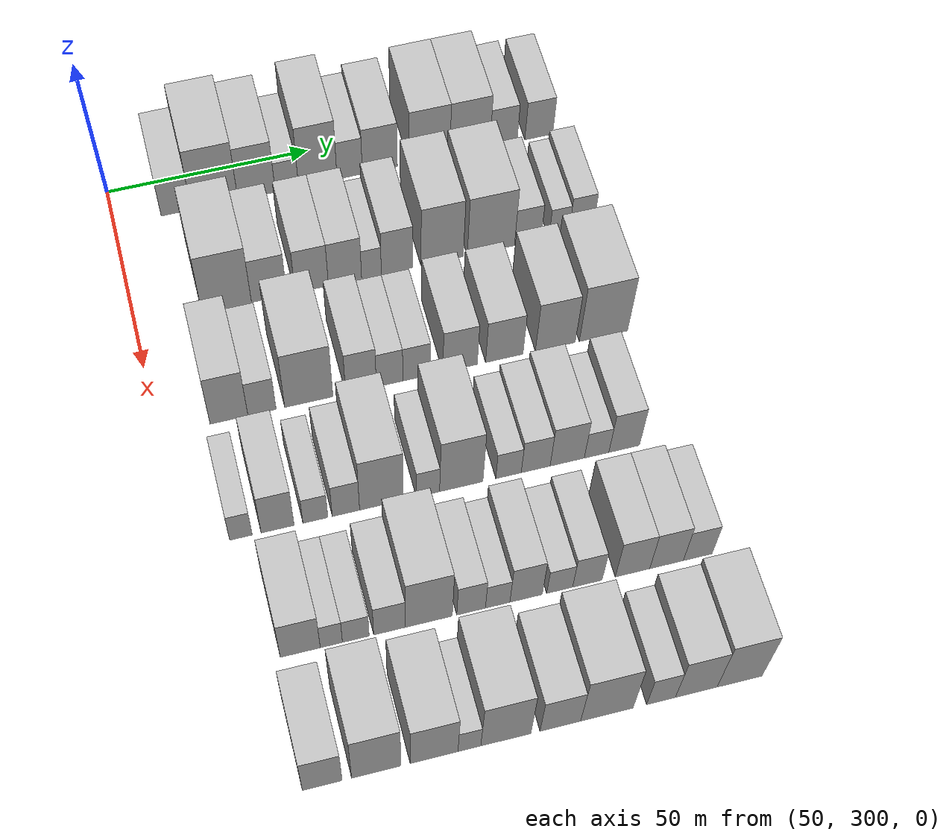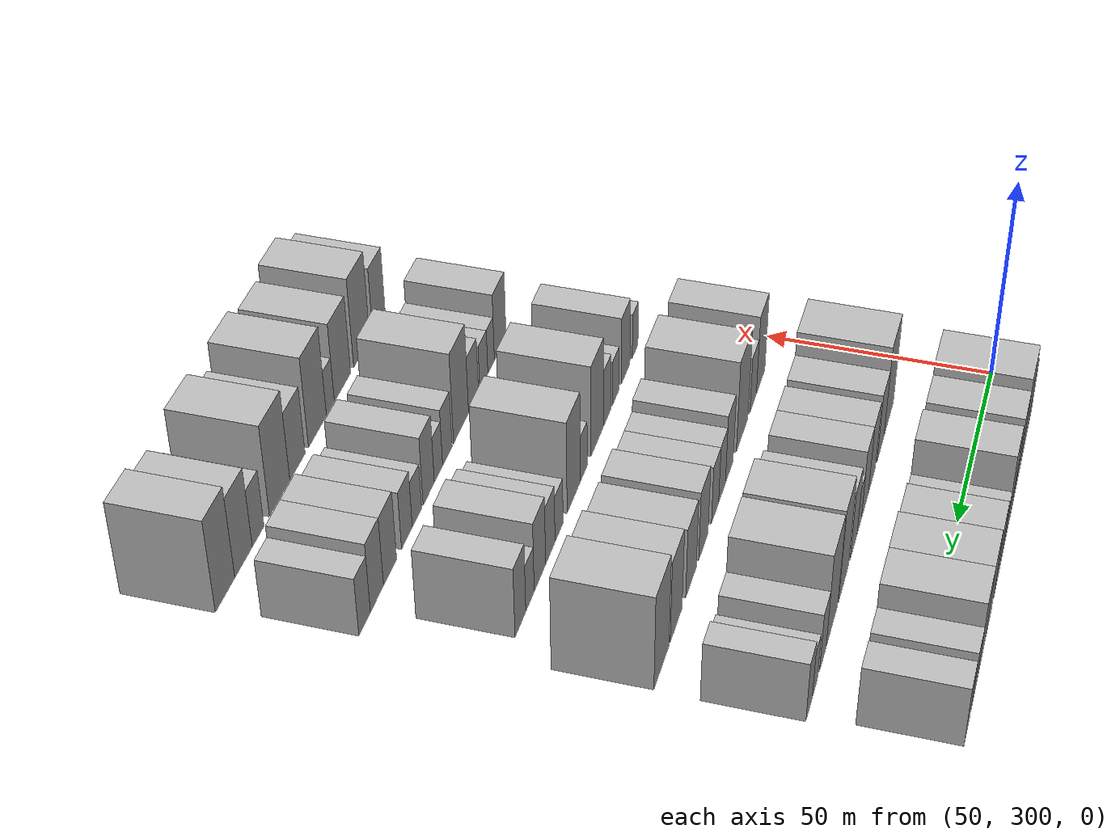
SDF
<sdf version="1.6">
 <world name="default">
  <model name="building_93">
   <static>1</static>
   <pose>50.0000 315.1147 0 0.000000 0.000000 0.000000</pose>
   <link name="link">
    <pose>0 0 7.50 0 0 0</pose>
    <collision name="collision"><geometry><box><size>20.0000 7.3586 15.0000</size></box></geometry></collision>
    <visual name="visual">
     <cast_shadows>0</cast_shadows>
     <geometry><box><size>20.0000 7.3586 15.0000</size></box></geometry>
     <material>
      <script>
       <uri>model://HANNAS_wall/materials/scripts</uri>
       <uri>model://HANNAS_wall/materials/textures</uri>
       <name>vrc/HANNAS_wall</name>
      </script>
     </material>
    </visual>
   </link>
  </model>
  <model name="building_94">
   <static>1</static>
   <pose>50.0000 324.5747 0 0.000000 0.000000 0.000000</pose>
   <link name="link">
    <pose>0 0 12.00 0 0 0</pose>
    <collision name="collision"><geometry><box><size>20.0000 11.5614 24.0000</size></box></geometry></collision>
    <visual name="visual">
     <cast_shadows>0</cast_shadows>
     <geometry><box><size>20.0000 11.5614 24.0000</size></box></geometry>
     <material>
      <script>
       <uri>model://HANNAS_wall/materials/scripts</uri>
       <uri>model://HANNAS_wall/materials/textures</uri>
       <name>vrc/HANNAS_wall</name>
      </script>
     </material>
    </visual>
   </link>
  </model>
  <model name="building_95">
   <static>1</static>
   <pose>50.0000 334.9908 0 0.000000 0.000000 0.000000</pose>
   <link name="link">
    <pose>0 0 10.50 0 0 0</pose>
    <collision name="collision"><geometry><box><size>20.0000 9.2709 21.0000</size></box></geometry></collision>
    <visual name="visual">
     <cast_shadows>0</cast_shadows>
     <geometry><box><size>20.0000 9.2709 21.0000</size></box></geometry>
     <material>
      <script>
       <uri>model://HANNAS_wall/materials/scripts</uri>
       <uri>model://HANNAS_wall/materials/textures</uri>
       <name>vrc/HANNAS_wall</name>
      </script>
     </material>
    </visual>
   </link>
  </model>
  <model name="building_96">
   <static>1</static>
   <pose>50.0000 342.5337 0 0.000000 0.000000 0.000000</pose>
   <link name="link">
    <pose>0 0 6.00 0 0 0</pose>
    <collision name="collision"><geometry><box><size>20.0000 5.8149 12.0000</size></box></geometry></collision>
    <visual name="visual">
     <cast_shadows>0</cast_shadows>
     <geometry><box><size>20.0000 5.8149 12.0000</size></box></geometry>
     <material>
      <script>
       <uri>model://HANNAS_wall/materials/scripts</uri>
       <uri>model://HANNAS_wall/materials/textures</uri>
       <name>vrc/HANNAS_wall</name>
      </script>
     </material>
    </visual>
   </link>
  </model>
  <model name="building_97">
   <static>1</static>
   <pose>50.0000 350.2542 0 0.000000 0.000000 0.000000</pose>
   <link name="link">
    <pose>0 0 12.00 0 0 0</pose>
    <collision name="collision"><geometry><box><size>20.0000 9.6260 24.0000</size></box></geometry></collision>
    <visual name="visual">
     <cast_shadows>0</cast_shadows>
     <geometry><box><size>20.0000 9.6260 24.0000</size></box></geometry>
     <material>
      <script>
       <uri>model://HANNAS_wall/materials/scripts</uri>
       <uri>model://HANNAS_wall/materials/textures</uri>
       <name>vrc/HANNAS_wall</name>
      </script>
     </material>
    </visual>
   </link>
  </model>
  <model name="building_98">
   <static>1</static>
   <pose>50.0000 358.2415 0 0.000000 0.000000 0.000000</pose>
   <link name="link">
    <pose>0 0 7.50 0 0 0</pose>
    <collision name="collision"><geometry><box><size>20.0000 6.3487 15.0000</size></box></geometry></collision>
    <visual name="visual">
     <cast_shadows>0</cast_shadows>
     <geometry><box><size>20.0000 6.3487 15.0000</size></box></geometry>
     <material>
      <script>
       <uri>model://HANNAS_wall/materials/scripts</uri>
       <uri>model://HANNAS_wall/materials/textures</uri>
       <name>vrc/HANNAS_wall</name>
      </script>
     </material>
    </visual>
   </link>
  </model>
  <model name="building_99">
   <static>1</static>
   <pose>50.0000 365.8269 0 0.000000 0.000000 0.000000</pose>
   <link name="link">
    <pose>0 0 9.00 0 0 0</pose>
    <collision name="collision"><geometry><box><size>20.0000 8.8220 18.0000</size></box></geometry></collision>
    <visual name="visual">
     <cast_shadows>0</cast_shadows>
     <geometry><box><size>20.0000 8.8220 18.0000</size></box></geometry>
     <material>
      <script>
       <uri>model://HANNAS_wall/materials/scripts</uri>
       <uri>model://HANNAS_wall/materials/textures</uri>
       <name>vrc/HANNAS_wall</name>
      </script>
     </material>
    </visual>
   </link>
  </model>
  <model name="building_100">
   <static>1</static>
   <pose>50.0000 378.4022 0 0.000000 0.000000 0.000000</pose>
   <link name="link">
    <pose>0 0 10.50 0 0 0</pose>
    <collision name="collision"><geometry><box><size>20.0000 10.3285 21.0000</size></box></geometry></collision>
    <visual name="visual">
     <cast_shadows>0</cast_shadows>
     <geometry><box><size>20.0000 10.3285 21.0000</size></box></geometry>
     <material>
      <script>
       <uri>model://HANNAS_wall/materials/scripts</uri>
       <uri>model://HANNAS_wall/materials/textures</uri>
       <name>vrc/HANNAS_wall</name>
      </script>
     </material>
    </visual>
   </link>
  </model>
  <model name="building_101">
   <static>1</static>
   <pose>50.0000 388.6731 0 0.000000 0.000000 0.000000</pose>
   <link name="link">
    <pose>0 0 10.50 0 0 0</pose>
    <collision name="collision"><geometry><box><size>20.0000 10.2133 21.0000</size></box></geometry></collision>
    <visual name="visual">
     <cast_shadows>0</cast_shadows>
     <geometry><box><size>20.0000 10.2133 21.0000</size></box></geometry>
     <material>
      <script>
       <uri>model://HANNAS_wall/materials/scripts</uri>
       <uri>model://HANNAS_wall/materials/textures</uri>
       <name>vrc/HANNAS_wall</name>
      </script>
     </material>
    </visual>
   </link>
  </model>
  <model name="building_102">
   <static>1</static>
   <pose>50.0000 397.2627 0 0.000000 0.000000 0.000000</pose>
   <link name="link">
    <pose>0 0 7.50 0 0 0</pose>
    <collision name="collision"><geometry><box><size>20.0000 6.9658 15.0000</size></box></geometry></collision>
    <visual name="visual">
     <cast_shadows>0</cast_shadows>
     <geometry><box><size>20.0000 6.9658 15.0000</size></box></geometry>
     <material>
      <script>
       <uri>model://HANNAS_wall/materials/scripts</uri>
       <uri>model://HANNAS_wall/materials/textures</uri>
       <name>vrc/HANNAS_wall</name>
      </script>
     </material>
    </visual>
   </link>
  </model>
  <model name="building_103">
   <static>1</static>
   <pose>50.0000 406.3309 0 0.000000 0.000000 0.000000</pose>
   <link name="link">
    <pose>0 0 7.50 0 0 0</pose>
    <collision name="collision"><geometry><box><size>20.0000 7.1707 15.0000</size></box></geometry></collision>
    <visual name="visual">
     <cast_shadows>0</cast_shadows>
     <geometry><box><size>20.0000 7.1707 15.0000</size></box></geometry>
     <material>
      <script>
       <uri>model://HANNAS_wall/materials/scripts</uri>
       <uri>model://HANNAS_wall/materials/textures</uri>
       <name>vrc/HANNAS_wall</name>
      </script>
     </material>
    </visual>
   </link>
  </model>
  <model name="building_197">
   <static>1</static>
   <pose>79.0000 321.7118 0 0.000000 0.000000 0.000000</pose>
   <link name="link">
    <pose>0 0 12.00 0 0 0</pose>
    <collision name="collision"><geometry><box><size>20.0000 11.8914 24.0000</size></box></geometry></collision>
    <visual name="visual">
     <cast_shadows>0</cast_shadows>
     <geometry><box><size>20.0000 11.8914 24.0000</size></box></geometry>
     <material>
      <script>
       <uri>model://HANNAS_wall/materials/scripts</uri>
       <uri>model://HANNAS_wall/materials/textures</uri>
       <name>vrc/HANNAS_wall</name>
      </script>
     </material>
    </visual>
   </link>
  </model>
  <model name="building_198">
   <static>1</static>
   <pose>79.0000 331.9058 0 0.000000 0.000000 0.000000</pose>
   <link name="link">
    <pose>0 0 9.00 0 0 0</pose>
    <collision name="collision"><geometry><box><size>20.0000 8.4966 18.0000</size></box></geometry></collision>
    <visual name="visual">
     <cast_shadows>0</cast_shadows>
     <geometry><box><size>20.0000 8.4966 18.0000</size></box></geometry>
     <material>
      <script>
       <uri>model://HANNAS_wall/materials/scripts</uri>
       <uri>model://HANNAS_wall/materials/textures</uri>
       <name>vrc/HANNAS_wall</name>
      </script>
     </material>
    </visual>
   </link>
  </model>
  <model name="building_199">
   <static>1</static>
   <pose>79.0000 342.1921 0 0.000000 0.000000 0.000000</pose>
   <link name="link">
    <pose>0 0 9.00 0 0 0</pose>
    <collision name="collision"><geometry><box><size>20.0000 8.0760 18.0000</size></box></geometry></collision>
    <visual name="visual">
     <cast_shadows>0</cast_shadows>
     <geometry><box><size>20.0000 8.0760 18.0000</size></box></geometry>
     <material>
      <script>
       <uri>model://HANNAS_wall/materials/scripts</uri>
       <uri>model://HANNAS_wall/materials/textures</uri>
       <name>vrc/HANNAS_wall</name>
      </script>
     </material>
    </visual>
   </link>
  </model>
  <model name="building_200">
   <static>1</static>
   <pose>79.0000 350.2621 0 0.000000 0.000000 0.000000</pose>
   <link name="link">
    <pose>0 0 9.00 0 0 0</pose>
    <collision name="collision"><geometry><box><size>20.0000 8.0639 18.0000</size></box></geometry></collision>
    <visual name="visual">
     <cast_shadows>0</cast_shadows>
     <geometry><box><size>20.0000 8.0639 18.0000</size></box></geometry>
     <material>
      <script>
       <uri>model://HANNAS_wall/materials/scripts</uri>
       <uri>model://HANNAS_wall/materials/textures</uri>
       <name>vrc/HANNAS_wall</name>
      </script>
     </material>
    </visual>
   </link>
  </model>
  <model name="building_201">
   <static>1</static>
   <pose>79.0000 356.7040 0 0.000000 0.000000 0.000000</pose>
   <link name="link">
    <pose>0 0 6.00 0 0 0</pose>
    <collision name="collision"><geometry><box><size>20.0000 4.8201 12.0000</size></box></geometry></collision>
    <visual name="visual">
     <cast_shadows>0</cast_shadows>
     <geometry><box><size>20.0000 4.8201 12.0000</size></box></geometry>
     <material>
      <script>
       <uri>model://HANNAS_wall/materials/scripts</uri>
       <uri>model://HANNAS_wall/materials/textures</uri>
       <name>vrc/HANNAS_wall</name>
      </script>
     </material>
    </visual>
   </link>
  </model>
  <model name="building_202">
   <static>1</static>
   <pose>79.0000 362.9516 0 0.000000 0.000000 0.000000</pose>
   <link name="link">
    <pose>0 0 9.00 0 0 0</pose>
    <collision name="collision"><geometry><box><size>20.0000 7.6750 18.0000</size></box></geometry></collision>
    <visual name="visual">
     <cast_shadows>0</cast_shadows>
     <geometry><box><size>20.0000 7.6750 18.0000</size></box></geometry>
     <material>
      <script>
       <uri>model://HANNAS_wall/materials/scripts</uri>
       <uri>model://HANNAS_wall/materials/textures</uri>
       <name>vrc/HANNAS_wall</name>
      </script>
     </material>
    </visual>
   </link>
  </model>
  <model name="building_203">
   <static>1</static>
   <pose>79.0000 374.0147 0 0.000000 0.000000 0.000000</pose>
   <link name="link">
    <pose>0 0 12.00 0 0 0</pose>
    <collision name="collision"><geometry><box><size>20.0000 10.4513 24.0000</size></box></geometry></collision>
    <visual name="visual">
     <cast_shadows>0</cast_shadows>
     <geometry><box><size>20.0000 10.4513 24.0000</size></box></geometry>
     <material>
      <script>
       <uri>model://HANNAS_wall/materials/scripts</uri>
       <uri>model://HANNAS_wall/materials/textures</uri>
       <name>vrc/HANNAS_wall</name>
      </script>
     </material>
    </visual>
   </link>
  </model>
  <model name="building_204">
   <static>1</static>
   <pose>79.0000 386.0785 0 0.000000 0.000000 0.000000</pose>
   <link name="link">
    <pose>0 0 12.00 0 0 0</pose>
    <collision name="collision"><geometry><box><size>20.0000 11.6763 24.0000</size></box></geometry></collision>
    <visual name="visual">
     <cast_shadows>0</cast_shadows>
     <geometry><box><size>20.0000 11.6763 24.0000</size></box></geometry>
     <material>
      <script>
       <uri>model://HANNAS_wall/materials/scripts</uri>
       <uri>model://HANNAS_wall/materials/textures</uri>
       <name>vrc/HANNAS_wall</name>
      </script>
     </material>
    </visual>
   </link>
  </model>
  <model name="building_205">
   <static>1</static>
   <pose>79.0000 395.2141 0 0.000000 0.000000 0.000000</pose>
   <link name="link">
    <pose>0 0 7.50 0 0 0</pose>
    <collision name="collision"><geometry><box><size>20.0000 6.5948 15.0000</size></box></geometry></collision>
    <visual name="visual">
     <cast_shadows>0</cast_shadows>
     <geometry><box><size>20.0000 6.5948 15.0000</size></box></geometry>
     <material>
      <script>
       <uri>model://HANNAS_wall/materials/scripts</uri>
       <uri>model://HANNAS_wall/materials/textures</uri>
       <name>vrc/HANNAS_wall</name>
      </script>
     </material>
    </visual>
   </link>
  </model>
  <model name="building_206">
   <static>1</static>
   <pose>79.0000 402.9992 0 0.000000 0.000000 0.000000</pose>
   <link name="link">
    <pose>0 0 6.00 0 0 0</pose>
    <collision name="collision"><geometry><box><size>20.0000 4.9756 12.0000</size></box></geometry></collision>
    <visual name="visual">
     <cast_shadows>0</cast_shadows>
     <geometry><box><size>20.0000 4.9756 12.0000</size></box></geometry>
     <material>
      <script>
       <uri>model://HANNAS_wall/materials/scripts</uri>
       <uri>model://HANNAS_wall/materials/textures</uri>
       <name>vrc/HANNAS_wall</name>
      </script>
     </material>
    </visual>
   </link>
  </model>
  <model name="building_207">
   <static>1</static>
   <pose>79.0000 408.5067 0 0.000000 0.000000 0.000000</pose>
   <link name="link">
    <pose>0 0 7.50 0 0 0</pose>
    <collision name="collision"><geometry><box><size>20.0000 6.0393 15.0000</size></box></geometry></collision>
    <visual name="visual">
     <cast_shadows>0</cast_shadows>
     <geometry><box><size>20.0000 6.0393 15.0000</size></box></geometry>
     <material>
      <script>
       <uri>model://HANNAS_wall/materials/scripts</uri>
       <uri>model://HANNAS_wall/materials/textures</uri>
       <name>vrc/HANNAS_wall</name>
      </script>
     </material>
    </visual>
   </link>
  </model>
  <model name="building_312">
   <static>1</static>
   <pose>108.0000 316.3879 0 0.000000 0.000000 0.000000</pose>
   <link name="link">
    <pose>0 0 10.50 0 0 0</pose>
    <collision name="collision"><geometry><box><size>20.0000 8.7699 21.0000</size></box></geometry></collision>
    <visual name="visual">
     <cast_shadows>0</cast_shadows>
     <geometry><box><size>20.0000 8.7699 21.0000</size></box></geometry>
     <material>
      <script>
       <uri>model://HANNAS_wall/materials/scripts</uri>
       <uri>model://HANNAS_wall/materials/textures</uri>
       <name>vrc/HANNAS_wall</name>
      </script>
     </material>
    </visual>
   </link>
  </model>
  <model name="building_313">
   <static>1</static>
   <pose>108.0000 324.0525 0 0.000000 0.000000 0.000000</pose>
   <link name="link">
    <pose>0 0 7.50 0 0 0</pose>
    <collision name="collision"><geometry><box><size>20.0000 6.5594 15.0000</size></box></geometry></collision>
    <visual name="visual">
     <cast_shadows>0</cast_shadows>
     <geometry><box><size>20.0000 6.5594 15.0000</size></box></geometry>
     <material>
      <script>
       <uri>model://HANNAS_wall/materials/scripts</uri>
       <uri>model://HANNAS_wall/materials/textures</uri>
       <name>vrc/HANNAS_wall</name>
      </script>
     </material>
    </visual>
   </link>
  </model>
  <model name="building_314">
   <static>1</static>
   <pose>108.0000 334.9730 0 0.000000 0.000000 0.000000</pose>
   <link name="link">
    <pose>0 0 12.00 0 0 0</pose>
    <collision name="collision"><geometry><box><size>20.0000 11.2816 24.0000</size></box></geometry></collision>
    <visual name="visual">
     <cast_shadows>0</cast_shadows>
     <geometry><box><size>20.0000 11.2816 24.0000</size></box></geometry>
     <material>
      <script>
       <uri>model://HANNAS_wall/materials/scripts</uri>
       <uri>model://HANNAS_wall/materials/textures</uri>
       <name>vrc/HANNAS_wall</name>
      </script>
     </material>
    </visual>
   </link>
  </model>
  <model name="building_315">
   <static>1</static>
   <pose>108.0000 347.2290 0 0.000000 0.000000 0.000000</pose>
   <link name="link">
    <pose>0 0 9.00 0 0 0</pose>
    <collision name="collision"><geometry><box><size>20.0000 7.2304 18.0000</size></box></geometry></collision>
    <visual name="visual">
     <cast_shadows>0</cast_shadows>
     <geometry><box><size>20.0000 7.2304 18.0000</size></box></geometry>
     <material>
      <script>
       <uri>model://HANNAS_wall/materials/scripts</uri>
       <uri>model://HANNAS_wall/materials/textures</uri>
       <name>vrc/HANNAS_wall</name>
      </script>
     </material>
    </visual>
   </link>
  </model>
  <model name="building_316">
   <static>1</static>
   <pose>108.0000 353.9692 0 0.000000 0.000000 0.000000</pose>
   <link name="link">
    <pose>0 0 7.50 0 0 0</pose>
    <collision name="collision"><geometry><box><size>20.0000 6.2499 15.0000</size></box></geometry></collision>
    <visual name="visual">
     <cast_shadows>0</cast_shadows>
     <geometry><box><size>20.0000 6.2499 15.0000</size></box></geometry>
     <material>
      <script>
       <uri>model://HANNAS_wall/materials/scripts</uri>
       <uri>model://HANNAS_wall/materials/textures</uri>
       <name>vrc/HANNAS_wall</name>
      </script>
     </material>
    </visual>
   </link>
  </model>
  <model name="building_317">
   <static>1</static>
   <pose>108.0000 360.3384 0 0.000000 0.000000 0.000000</pose>
   <link name="link">
    <pose>0 0 7.50 0 0 0</pose>
    <collision name="collision"><geometry><box><size>20.0000 6.4885 15.0000</size></box></geometry></collision>
    <visual name="visual">
     <cast_shadows>0</cast_shadows>
     <geometry><box><size>20.0000 6.4885 15.0000</size></box></geometry>
     <material>
      <script>
       <uri>model://HANNAS_wall/materials/scripts</uri>
       <uri>model://HANNAS_wall/materials/textures</uri>
       <name>vrc/HANNAS_wall</name>
      </script>
     </material>
    </visual>
   </link>
  </model>
  <model name="building_318">
   <static>1</static>
   <pose>108.0000 370.7059 0 0.000000 0.000000 0.000000</pose>
   <link name="link">
    <pose>0 0 9.00 0 0 0</pose>
    <collision name="collision"><geometry><box><size>20.0000 8.2465 18.0000</size></box></geometry></collision>
    <visual name="visual">
     <cast_shadows>0</cast_shadows>
     <geometry><box><size>20.0000 8.2465 18.0000</size></box></geometry>
     <material>
      <script>
       <uri>model://HANNAS_wall/materials/scripts</uri>
       <uri>model://HANNAS_wall/materials/textures</uri>
       <name>vrc/HANNAS_wall</name>
      </script>
     </material>
    </visual>
   </link>
  </model>
  <model name="building_319">
   <static>1</static>
   <pose>108.0000 381.3115 0 0.000000 0.000000 0.000000</pose>
   <link name="link">
    <pose>0 0 9.00 0 0 0</pose>
    <collision name="collision"><geometry><box><size>20.0000 8.9647 18.0000</size></box></geometry></collision>
    <visual name="visual">
     <cast_shadows>0</cast_shadows>
     <geometry><box><size>20.0000 8.9647 18.0000</size></box></geometry>
     <material>
      <script>
       <uri>model://HANNAS_wall/materials/scripts</uri>
       <uri>model://HANNAS_wall/materials/textures</uri>
       <name>vrc/HANNAS_wall</name>
      </script>
     </material>
    </visual>
   </link>
  </model>
  <model name="building_320">
   <static>1</static>
   <pose>108.0000 393.6138 0 0.000000 0.000000 0.000000</pose>
   <link name="link">
    <pose>0 0 10.50 0 0 0</pose>
    <collision name="collision"><geometry><box><size>20.0000 9.6397 21.0000</size></box></geometry></collision>
    <visual name="visual">
     <cast_shadows>0</cast_shadows>
     <geometry><box><size>20.0000 9.6397 21.0000</size></box></geometry>
     <material>
      <script>
       <uri>model://HANNAS_wall/materials/scripts</uri>
       <uri>model://HANNAS_wall/materials/textures</uri>
       <name>vrc/HANNAS_wall</name>
      </script>
     </material>
    </visual>
   </link>
  </model>
  <model name="building_321">
   <static>1</static>
   <pose>108.0000 405.2949 0 0.000000 0.000000 0.000000</pose>
   <link name="link">
    <pose>0 0 12.00 0 0 0</pose>
    <collision name="collision"><geometry><box><size>20.0000 11.7224 24.0000</size></box></geometry></collision>
    <visual name="visual">
     <cast_shadows>0</cast_shadows>
     <geometry><box><size>20.0000 11.7224 24.0000</size></box></geometry>
     <material>
      <script>
       <uri>model://HANNAS_wall/materials/scripts</uri>
       <uri>model://HANNAS_wall/materials/textures</uri>
       <name>vrc/HANNAS_wall</name>
      </script>
     </material>
    </visual>
   </link>
  </model>
  <model name="building_416">
   <static>1</static>
   <pose>137.0000 313.1761 0 0.000000 0.000000 0.000000</pose>
   <link name="link">
    <pose>0 0 6.00 0 0 0</pose>
    <collision name="collision"><geometry><box><size>20.0000 5.0554 12.0000</size></box></geometry></collision>
    <visual name="visual">
     <cast_shadows>0</cast_shadows>
     <geometry><box><size>20.0000 5.0554 12.0000</size></box></geometry>
     <material>
      <script>
       <uri>model://HANNAS_wall/materials/scripts</uri>
       <uri>model://HANNAS_wall/materials/textures</uri>
       <name>vrc/HANNAS_wall</name>
      </script>
     </material>
    </visual>
   </link>
  </model>
  <model name="building_417">
   <static>1</static>
   <pose>137.0000 321.4196 0 0.000000 0.000000 0.000000</pose>
   <link name="link">
    <pose>0 0 9.00 0 0 0</pose>
    <collision name="collision"><geometry><box><size>20.0000 7.4315 18.0000</size></box></geometry></collision>
    <visual name="visual">
     <cast_shadows>0</cast_shadows>
     <geometry><box><size>20.0000 7.4315 18.0000</size></box></geometry>
     <material>
      <script>
       <uri>model://HANNAS_wall/materials/scripts</uri>
       <uri>model://HANNAS_wall/materials/textures</uri>
       <name>vrc/HANNAS_wall</name>
      </script>
     </material>
    </visual>
   </link>
  </model>
  <model name="building_418">
   <static>1</static>
   <pose>137.0000 329.9556 0 0.000000 0.000000 0.000000</pose>
   <link name="link">
    <pose>0 0 6.00 0 0 0</pose>
    <collision name="collision"><geometry><box><size>20.0000 5.6404 12.0000</size></box></geometry></collision>
    <visual name="visual">
     <cast_shadows>0</cast_shadows>
     <geometry><box><size>20.0000 5.6404 12.0000</size></box></geometry>
     <material>
      <script>
       <uri>model://HANNAS_wall/materials/scripts</uri>
       <uri>model://HANNAS_wall/materials/textures</uri>
       <name>vrc/HANNAS_wall</name>
      </script>
     </material>
    </visual>
   </link>
  </model>
  <model name="building_419">
   <static>1</static>
   <pose>137.0000 336.8790 0 0.000000 0.000000 0.000000</pose>
   <link name="link">
    <pose>0 0 7.50 0 0 0</pose>
    <collision name="collision"><geometry><box><size>20.0000 6.2063 15.0000</size></box></geometry></collision>
    <visual name="visual">
     <cast_shadows>0</cast_shadows>
     <geometry><box><size>20.0000 6.2063 15.0000</size></box></geometry>
     <material>
      <script>
       <uri>model://HANNAS_wall/materials/scripts</uri>
       <uri>model://HANNAS_wall/materials/textures</uri>
       <name>vrc/HANNAS_wall</name>
      </script>
     </material>
    </visual>
   </link>
  </model>
  <model name="building_420">
   <static>1</static>
   <pose>137.0000 344.9512 0 0.000000 0.000000 0.000000</pose>
   <link name="link">
    <pose>0 0 12.00 0 0 0</pose>
    <collision name="collision"><geometry><box><size>20.0000 9.9382 24.0000</size></box></geometry></collision>
    <visual name="visual">
     <cast_shadows>0</cast_shadows>
     <geometry><box><size>20.0000 9.9382 24.0000</size></box></geometry>
     <material>
      <script>
       <uri>model://HANNAS_wall/materials/scripts</uri>
       <uri>model://HANNAS_wall/materials/textures</uri>
       <name>vrc/HANNAS_wall</name>
      </script>
     </material>
    </visual>
   </link>
  </model>
  <model name="building_421">
   <static>1</static>
   <pose>137.0000 355.5983 0 0.000000 0.000000 0.000000</pose>
   <link name="link">
    <pose>0 0 6.00 0 0 0</pose>
    <collision name="collision"><geometry><box><size>20.0000 5.3561 12.0000</size></box></geometry></collision>
    <visual name="visual">
     <cast_shadows>0</cast_shadows>
     <geometry><box><size>20.0000 5.3561 12.0000</size></box></geometry>
     <material>
      <script>
       <uri>model://HANNAS_wall/materials/scripts</uri>
       <uri>model://HANNAS_wall/materials/textures</uri>
       <name>vrc/HANNAS_wall</name>
      </script>
     </material>
    </visual>
   </link>
  </model>
  <model name="building_422">
   <static>1</static>
   <pose>137.0000 363.2684 0 0.000000 0.000000 0.000000</pose>
   <link name="link">
    <pose>0 0 12.00 0 0 0</pose>
    <collision name="collision"><geometry><box><size>20.0000 9.9841 24.0000</size></box></geometry></collision>
    <visual name="visual">
     <cast_shadows>0</cast_shadows>
     <geometry><box><size>20.0000 9.9841 24.0000</size></box></geometry>
     <material>
      <script>
       <uri>model://HANNAS_wall/materials/scripts</uri>
       <uri>model://HANNAS_wall/materials/textures</uri>
       <name>vrc/HANNAS_wall</name>
      </script>
     </material>
    </visual>
   </link>
  </model>
  <model name="building_423">
   <static>1</static>
   <pose>137.0000 374.2125 0 0.000000 0.000000 0.000000</pose>
   <link name="link">
    <pose>0 0 6.00 0 0 0</pose>
    <collision name="collision"><geometry><box><size>20.0000 5.9040 12.0000</size></box></geometry></collision>
    <visual name="visual">
     <cast_shadows>0</cast_shadows>
     <geometry><box><size>20.0000 5.9040 12.0000</size></box></geometry>
     <material>
      <script>
       <uri>model://HANNAS_wall/materials/scripts</uri>
       <uri>model://HANNAS_wall/materials/textures</uri>
       <name>vrc/HANNAS_wall</name>
      </script>
     </material>
    </visual>
   </link>
  </model>
  <model name="building_424">
   <static>1</static>
   <pose>137.0000 380.5310 0 0.000000 0.000000 0.000000</pose>
   <link name="link">
    <pose>0 0 7.50 0 0 0</pose>
    <collision name="collision"><geometry><box><size>20.0000 6.7330 15.0000</size></box></geometry></collision>
    <visual name="visual">
     <cast_shadows>0</cast_shadows>
     <geometry><box><size>20.0000 6.7330 15.0000</size></box></geometry>
     <material>
      <script>
       <uri>model://HANNAS_wall/materials/scripts</uri>
       <uri>model://HANNAS_wall/materials/textures</uri>
       <name>vrc/HANNAS_wall</name>
      </script>
     </material>
    </visual>
   </link>
  </model>
  <model name="building_425">
   <static>1</static>
   <pose>137.0000 387.9088 0 0.000000 0.000000 0.000000</pose>
   <link name="link">
    <pose>0 0 9.00 0 0 0</pose>
    <collision name="collision"><geometry><box><size>20.0000 8.0225 18.0000</size></box></geometry></collision>
    <visual name="visual">
     <cast_shadows>0</cast_shadows>
     <geometry><box><size>20.0000 8.0225 18.0000</size></box></geometry>
     <material>
      <script>
       <uri>model://HANNAS_wall/materials/scripts</uri>
       <uri>model://HANNAS_wall/materials/textures</uri>
       <name>vrc/HANNAS_wall</name>
      </script>
     </material>
    </visual>
   </link>
  </model>
  <model name="building_426">
   <static>1</static>
   <pose>137.0000 394.7937 0 0.000000 0.000000 0.000000</pose>
   <link name="link">
    <pose>0 0 6.00 0 0 0</pose>
    <collision name="collision"><geometry><box><size>20.0000 5.7473 12.0000</size></box></geometry></collision>
    <visual name="visual">
     <cast_shadows>0</cast_shadows>
     <geometry><box><size>20.0000 5.7473 12.0000</size></box></geometry>
     <material>
      <script>
       <uri>model://HANNAS_wall/materials/scripts</uri>
       <uri>model://HANNAS_wall/materials/textures</uri>
       <name>vrc/HANNAS_wall</name>
      </script>
     </material>
    </visual>
   </link>
  </model>
  <model name="building_427">
   <static>1</static>
   <pose>137.0000 401.2777 0 0.000000 0.000000 0.000000</pose>
   <link name="link">
    <pose>0 0 9.00 0 0 0</pose>
    <collision name="collision"><geometry><box><size>20.0000 7.2207 18.0000</size></box></geometry></collision>
    <visual name="visual">
     <cast_shadows>0</cast_shadows>
     <geometry><box><size>20.0000 7.2207 18.0000</size></box></geometry>
     <material>
      <script>
       <uri>model://HANNAS_wall/materials/scripts</uri>
       <uri>model://HANNAS_wall/materials/textures</uri>
       <name>vrc/HANNAS_wall</name>
      </script>
     </material>
    </visual>
   </link>
  </model>
  <model name="building_536">
   <static>1</static>
   <pose>166.0000 320.0966 0 0.000000 0.000000 0.000000</pose>
   <link name="link">
    <pose>0 0 9.00 0 0 0</pose>
    <collision name="collision"><geometry><box><size>20.0000 8.7142 18.0000</size></box></geometry></collision>
    <visual name="visual">
     <cast_shadows>0</cast_shadows>
     <geometry><box><size>20.0000 8.7142 18.0000</size></box></geometry>
     <material>
      <script>
       <uri>model://HANNAS_wall/materials/scripts</uri>
       <uri>model://HANNAS_wall/materials/textures</uri>
       <name>vrc/HANNAS_wall</name>
      </script>
     </material>
    </visual>
   </link>
  </model>
  <model name="building_537">
   <static>1</static>
   <pose>166.0000 326.8790 0 0.000000 0.000000 0.000000</pose>
   <link name="link">
    <pose>0 0 6.00 0 0 0</pose>
    <collision name="collision"><geometry><box><size>20.0000 4.8506 12.0000</size></box></geometry></collision>
    <visual name="visual">
     <cast_shadows>0</cast_shadows>
     <geometry><box><size>20.0000 4.8506 12.0000</size></box></geometry>
     <material>
      <script>
       <uri>model://HANNAS_wall/materials/scripts</uri>
       <uri>model://HANNAS_wall/materials/textures</uri>
       <name>vrc/HANNAS_wall</name>
      </script>
     </material>
    </visual>
   </link>
  </model>
  <model name="building_538">
   <static>1</static>
   <pose>166.0000 332.2320 0 0.000000 0.000000 0.000000</pose>
   <link name="link">
    <pose>0 0 6.00 0 0 0</pose>
    <collision name="collision"><geometry><box><size>20.0000 5.8556 12.0000</size></box></geometry></collision>
    <visual name="visual">
     <cast_shadows>0</cast_shadows>
     <geometry><box><size>20.0000 5.8556 12.0000</size></box></geometry>
     <material>
      <script>
       <uri>model://HANNAS_wall/materials/scripts</uri>
       <uri>model://HANNAS_wall/materials/textures</uri>
       <name>vrc/HANNAS_wall</name>
      </script>
     </material>
    </visual>
   </link>
  </model>
  <model name="building_539">
   <static>1</static>
   <pose>166.0000 339.6616 0 0.000000 0.000000 0.000000</pose>
   <link name="link">
    <pose>0 0 7.50 0 0 0</pose>
    <collision name="collision"><geometry><box><size>20.0000 7.0036 15.0000</size></box></geometry></collision>
    <visual name="visual">
     <cast_shadows>0</cast_shadows>
     <geometry><box><size>20.0000 7.0036 15.0000</size></box></geometry>
     <material>
      <script>
       <uri>model://HANNAS_wall/materials/scripts</uri>
       <uri>model://HANNAS_wall/materials/textures</uri>
       <name>vrc/HANNAS_wall</name>
      </script>
     </material>
    </visual>
   </link>
  </model>
  <model name="building_540">
   <static>1</static>
   <pose>166.0000 348.3557 0 0.000000 0.000000 0.000000</pose>
   <link name="link">
    <pose>0 0 12.00 0 0 0</pose>
    <collision name="collision"><geometry><box><size>20.0000 10.3846 24.0000</size></box></geometry></collision>
    <visual name="visual">
     <cast_shadows>0</cast_shadows>
     <geometry><box><size>20.0000 10.3846 24.0000</size></box></geometry>
     <material>
      <script>
       <uri>model://HANNAS_wall/materials/scripts</uri>
       <uri>model://HANNAS_wall/materials/textures</uri>
       <name>vrc/HANNAS_wall</name>
      </script>
     </material>
    </visual>
   </link>
  </model>
  <model name="building_541">
   <static>1</static>
   <pose>166.0000 357.7357 0 0.000000 0.000000 0.000000</pose>
   <link name="link">
    <pose>0 0 7.50 0 0 0</pose>
    <collision name="collision"><geometry><box><size>20.0000 6.3753 15.0000</size></box></geometry></collision>
    <visual name="visual">
     <cast_shadows>0</cast_shadows>
     <geometry><box><size>20.0000 6.3753 15.0000</size></box></geometry>
     <material>
      <script>
       <uri>model://HANNAS_wall/materials/scripts</uri>
       <uri>model://HANNAS_wall/materials/textures</uri>
       <name>vrc/HANNAS_wall</name>
      </script>
     </material>
    </visual>
   </link>
  </model>
  <model name="building_542">
   <static>1</static>
   <pose>166.0000 363.6616 0 0.000000 0.000000 0.000000</pose>
   <link name="link">
    <pose>0 0 6.00 0 0 0</pose>
    <collision name="collision"><geometry><box><size>20.0000 5.4766 12.0000</size></box></geometry></collision>
    <visual name="visual">
     <cast_shadows>0</cast_shadows>
     <geometry><box><size>20.0000 5.4766 12.0000</size></box></geometry>
     <material>
      <script>
       <uri>model://HANNAS_wall/materials/scripts</uri>
       <uri>model://HANNAS_wall/materials/textures</uri>
       <name>vrc/HANNAS_wall</name>
      </script>
     </material>
    </visual>
   </link>
  </model>
  <model name="building_543">
   <static>1</static>
   <pose>166.0000 370.0381 0 0.000000 0.000000 0.000000</pose>
   <link name="link">
    <pose>0 0 9.00 0 0 0</pose>
    <collision name="collision"><geometry><box><size>20.0000 7.2764 18.0000</size></box></geometry></collision>
    <visual name="visual">
     <cast_shadows>0</cast_shadows>
     <geometry><box><size>20.0000 7.2764 18.0000</size></box></geometry>
     <material>
      <script>
       <uri>model://HANNAS_wall/materials/scripts</uri>
       <uri>model://HANNAS_wall/materials/textures</uri>
       <name>vrc/HANNAS_wall</name>
      </script>
     </material>
    </visual>
   </link>
  </model>
  <model name="building_544">
   <static>1</static>
   <pose>166.0000 377.6025 0 0.000000 0.000000 0.000000</pose>
   <link name="link">
    <pose>0 0 6.00 0 0 0</pose>
    <collision name="collision"><geometry><box><size>20.0000 5.8523 12.0000</size></box></geometry></collision>
    <visual name="visual">
     <cast_shadows>0</cast_shadows>
     <geometry><box><size>20.0000 5.8523 12.0000</size></box></geometry>
     <material>
      <script>
       <uri>model://HANNAS_wall/materials/scripts</uri>
       <uri>model://HANNAS_wall/materials/textures</uri>
       <name>vrc/HANNAS_wall</name>
      </script>
     </material>
    </visual>
   </link>
  </model>
  <model name="building_545">
   <static>1</static>
   <pose>166.0000 383.8621 0 0.000000 0.000000 0.000000</pose>
   <link name="link">
    <pose>0 0 7.50 0 0 0</pose>
    <collision name="collision"><geometry><box><size>20.0000 6.6670 15.0000</size></box></geometry></collision>
    <visual name="visual">
     <cast_shadows>0</cast_shadows>
     <geometry><box><size>20.0000 6.6670 15.0000</size></box></geometry>
     <material>
      <script>
       <uri>model://HANNAS_wall/materials/scripts</uri>
       <uri>model://HANNAS_wall/materials/textures</uri>
       <name>vrc/HANNAS_wall</name>
      </script>
     </material>
    </visual>
   </link>
  </model>
  <model name="building_546">
   <static>1</static>
   <pose>166.0000 394.1187 0 0.000000 0.000000 0.000000</pose>
   <link name="link">
    <pose>0 0 9.00 0 0 0</pose>
    <collision name="collision"><geometry><box><size>20.0000 7.8462 18.0000</size></box></geometry></collision>
    <visual name="visual">
     <cast_shadows>0</cast_shadows>
     <geometry><box><size>20.0000 7.8462 18.0000</size></box></geometry>
     <material>
      <script>
       <uri>model://HANNAS_wall/materials/scripts</uri>
       <uri>model://HANNAS_wall/materials/textures</uri>
       <name>vrc/HANNAS_wall</name>
      </script>
     </material>
    </visual>
   </link>
  </model>
  <model name="building_547">
   <static>1</static>
   <pose>166.0000 401.8949 0 0.000000 0.000000 0.000000</pose>
   <link name="link">
    <pose>0 0 9.00 0 0 0</pose>
    <collision name="collision"><geometry><box><size>20.0000 7.7063 18.0000</size></box></geometry></collision>
    <visual name="visual">
     <cast_shadows>0</cast_shadows>
     <geometry><box><size>20.0000 7.7063 18.0000</size></box></geometry>
     <material>
      <script>
       <uri>model://HANNAS_wall/materials/scripts</uri>
       <uri>model://HANNAS_wall/materials/textures</uri>
       <name>vrc/HANNAS_wall</name>
      </script>
     </material>
    </visual>
   </link>
  </model>
  <model name="building_548">
   <static>1</static>
   <pose>166.0000 409.0440 0 0.000000 0.000000 0.000000</pose>
   <link name="link">
    <pose>0 0 7.50 0 0 0</pose>
    <collision name="collision"><geometry><box><size>20.0000 6.5917 15.0000</size></box></geometry></collision>
    <visual name="visual">
     <cast_shadows>0</cast_shadows>
     <geometry><box><size>20.0000 6.5917 15.0000</size></box></geometry>
     <material>
      <script>
       <uri>model://HANNAS_wall/materials/scripts</uri>
       <uri>model://HANNAS_wall/materials/textures</uri>
       <name>vrc/HANNAS_wall</name>
      </script>
     </material>
    </visual>
   </link>
  </model>
  <model name="building_649">
   <static>1</static>
   <pose>195.0000 318.2671 0 0.000000 0.000000 0.000000</pose>
   <link name="link">
    <pose>0 0 9.00 0 0 0</pose>
    <collision name="collision"><geometry><box><size>20.0000 8.3789 18.0000</size></box></geometry></collision>
    <visual name="visual">
     <cast_shadows>0</cast_shadows>
     <geometry><box><size>20.0000 8.3789 18.0000</size></box></geometry>
     <material>
      <script>
       <uri>model://HANNAS_wall/materials/scripts</uri>
       <uri>model://HANNAS_wall/materials/textures</uri>
       <name>vrc/HANNAS_wall</name>
      </script>
     </material>
    </visual>
   </link>
  </model>
  <model name="building_650">
   <static>1</static>
   <pose>195.0000 329.6714 0 0.000000 0.000000 0.000000</pose>
   <link name="link">
    <pose>0 0 12.00 0 0 0</pose>
    <collision name="collision"><geometry><box><size>20.0000 10.4297 24.0000</size></box></geometry></collision>
    <visual name="visual">
     <cast_shadows>0</cast_shadows>
     <geometry><box><size>20.0000 10.4297 24.0000</size></box></geometry>
     <material>
      <script>
       <uri>model://HANNAS_wall/materials/scripts</uri>
       <uri>model://HANNAS_wall/materials/textures</uri>
       <name>vrc/HANNAS_wall</name>
      </script>
     </material>
    </visual>
   </link>
  </model>
  <model name="building_651">
   <static>1</static>
   <pose>195.0000 341.9891 0 0.000000 0.000000 0.000000</pose>
   <link name="link">
    <pose>0 0 10.50 0 0 0</pose>
    <collision name="collision"><geometry><box><size>20.0000 10.2058 21.0000</size></box></geometry></collision>
    <visual name="visual">
     <cast_shadows>0</cast_shadows>
     <geometry><box><size>20.0000 10.2058 21.0000</size></box></geometry>
     <material>
      <script>
       <uri>model://HANNAS_wall/materials/scripts</uri>
       <uri>model://HANNAS_wall/materials/textures</uri>
       <name>vrc/HANNAS_wall</name>
      </script>
     </material>
    </visual>
   </link>
  </model>
  <model name="building_652">
   <static>1</static>
   <pose>195.0000 349.5483 0 0.000000 0.000000 0.000000</pose>
   <link name="link">
    <pose>0 0 6.00 0 0 0</pose>
    <collision name="collision"><geometry><box><size>20.0000 4.9126 12.0000</size></box></geometry></collision>
    <visual name="visual">
     <cast_shadows>0</cast_shadows>
     <geometry><box><size>20.0000 4.9126 12.0000</size></box></geometry>
     <material>
      <script>
       <uri>model://HANNAS_wall/materials/scripts</uri>
       <uri>model://HANNAS_wall/materials/textures</uri>
       <name>vrc/HANNAS_wall</name>
      </script>
     </material>
    </visual>
   </link>
  </model>
  <model name="building_653">
   <static>1</static>
   <pose>195.0000 357.4019 0 0.000000 0.000000 0.000000</pose>
   <link name="link">
    <pose>0 0 12.00 0 0 0</pose>
    <collision name="collision"><geometry><box><size>20.0000 10.7945 24.0000</size></box></geometry></collision>
    <visual name="visual">
     <cast_shadows>0</cast_shadows>
     <geometry><box><size>20.0000 10.7945 24.0000</size></box></geometry>
     <material>
      <script>
       <uri>model://HANNAS_wall/materials/scripts</uri>
       <uri>model://HANNAS_wall/materials/textures</uri>
       <name>vrc/HANNAS_wall</name>
      </script>
     </material>
    </visual>
   </link>
  </model>
  <model name="building_654">
   <static>1</static>
   <pose>195.0000 369.2088 0 0.000000 0.000000 0.000000</pose>
   <link name="link">
    <pose>0 0 9.00 0 0 0</pose>
    <collision name="collision"><geometry><box><size>20.0000 8.8194 18.0000</size></box></geometry></collision>
    <visual name="visual">
     <cast_shadows>0</cast_shadows>
     <geometry><box><size>20.0000 8.8194 18.0000</size></box></geometry>
     <material>
      <script>
       <uri>model://HANNAS_wall/materials/scripts</uri>
       <uri>model://HANNAS_wall/materials/textures</uri>
       <name>vrc/HANNAS_wall</name>
      </script>
     </material>
    </visual>
   </link>
  </model>
  <model name="building_655">
   <static>1</static>
   <pose>195.0000 379.3550 0 0.000000 0.000000 0.000000</pose>
   <link name="link">
    <pose>0 0 12.00 0 0 0</pose>
    <collision name="collision"><geometry><box><size>20.0000 11.4730 24.0000</size></box></geometry></collision>
    <visual name="visual">
     <cast_shadows>0</cast_shadows>
     <geometry><box><size>20.0000 11.4730 24.0000</size></box></geometry>
     <material>
      <script>
       <uri>model://HANNAS_wall/materials/scripts</uri>
       <uri>model://HANNAS_wall/materials/textures</uri>
       <name>vrc/HANNAS_wall</name>
      </script>
     </material>
    </visual>
   </link>
  </model>
  <model name="building_656">
   <static>1</static>
   <pose>195.0000 391.2537 0 0.000000 0.000000 0.000000</pose>
   <link name="link">
    <pose>0 0 7.50 0 0 0</pose>
    <collision name="collision"><geometry><box><size>20.0000 6.3245 15.0000</size></box></geometry></collision>
    <visual name="visual">
     <cast_shadows>0</cast_shadows>
     <geometry><box><size>20.0000 6.3245 15.0000</size></box></geometry>
     <material>
      <script>
       <uri>model://HANNAS_wall/materials/scripts</uri>
       <uri>model://HANNAS_wall/materials/textures</uri>
       <name>vrc/HANNAS_wall</name>
      </script>
     </material>
    </visual>
   </link>
  </model>
  <model name="building_657">
   <static>1</static>
   <pose>195.0000 399.0361 0 0.000000 0.000000 0.000000</pose>
   <link name="link">
    <pose>0 0 10.50 0 0 0</pose>
    <collision name="collision"><geometry><box><size>20.0000 9.2403 21.0000</size></box></geometry></collision>
    <visual name="visual">
     <cast_shadows>0</cast_shadows>
     <geometry><box><size>20.0000 9.2403 21.0000</size></box></geometry>
     <material>
      <script>
       <uri>model://HANNAS_wall/materials/scripts</uri>
       <uri>model://HANNAS_wall/materials/textures</uri>
       <name>vrc/HANNAS_wall</name>
      </script>
     </material>
    </visual>
   </link>
  </model>
  <model name="building_658">
   <static>1</static>
   <pose>195.0000 408.6676 0 0.000000 0.000000 0.000000</pose>
   <link name="link">
    <pose>0 0 12.00 0 0 0</pose>
    <collision name="collision"><geometry><box><size>20.0000 10.0227 24.0000</size></box></geometry></collision>
    <visual name="visual">
     <cast_shadows>0</cast_shadows>
     <geometry><box><size>20.0000 10.0227 24.0000</size></box></geometry>
     <material>
      <script>
       <uri>model://HANNAS_wall/materials/scripts</uri>
       <uri>model://HANNAS_wall/materials/textures</uri>
       <name>vrc/HANNAS_wall</name>
      </script>
     </material>
    </visual>
   </link>
  </model>
 </world>
</sdf>
